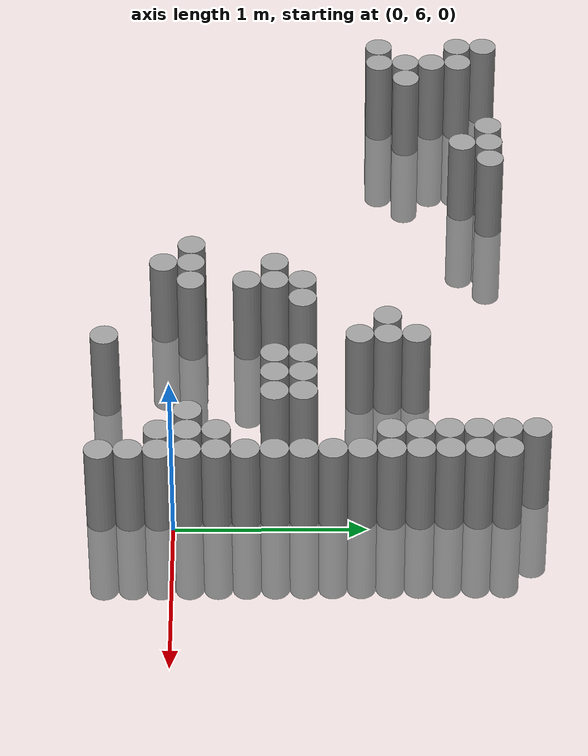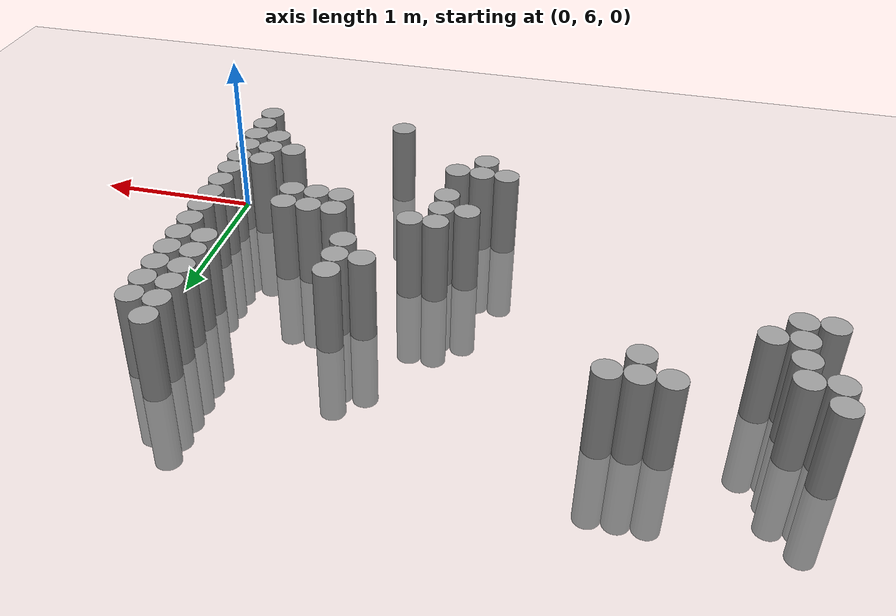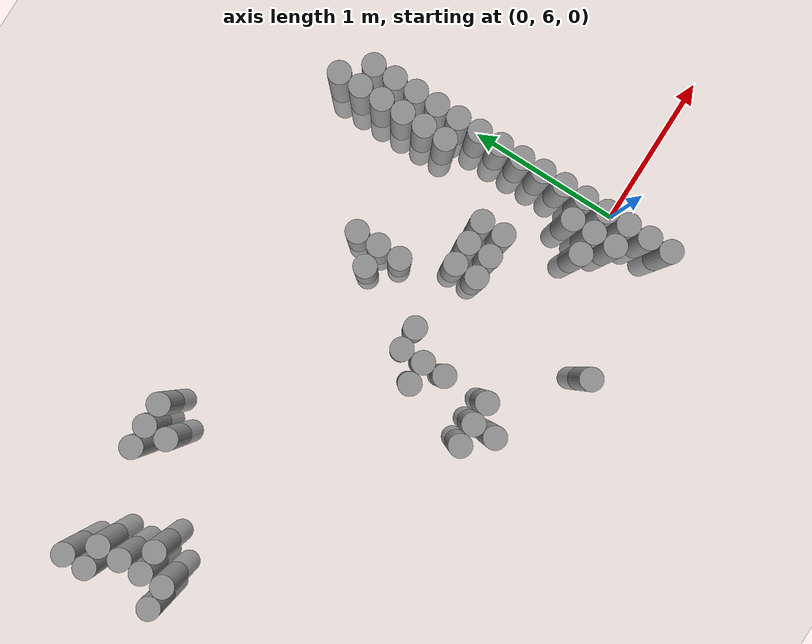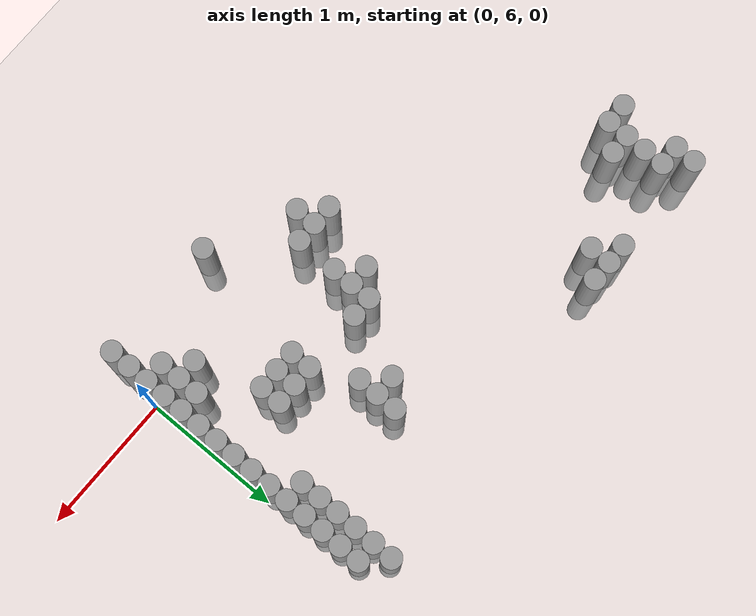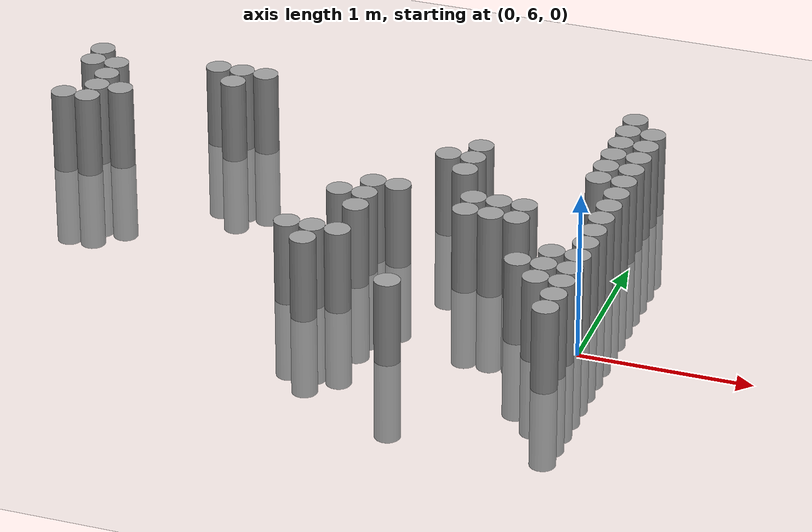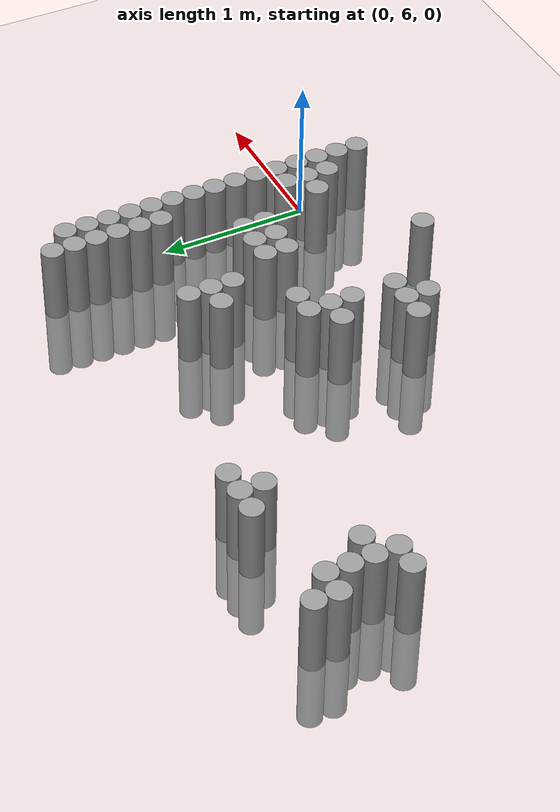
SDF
<sdf version="1.6">
 <world name="default">
  <model name="ground_plane">
   <static>1</static>
   <static>1</static>
   <link name="link">
    <collision name="collision">
     <geometry><plane><normal>0 0 1</normal><size>100 100</size></plane></geometry>
     <surface><friction><ode><mu>100</mu><mu2>50</mu2></ode></friction></surface>
    </collision>
    <visual name="visual">
     <cast_shadows>0</cast_shadows>
     <geometry><plane><normal>0 0 1</normal><size>100 100</size></plane></geometry>
     <material>
      <script><uri>file://media/materials/scripts/gazebo.material</uri><name>Gazebo/Grey</name></script>
     </material>
    </visual>
   </link>
  </model>
  <model name="unit_cylinder_159">
   <static>1</static>
   <pose>-3.525000 7.125000 0.000000 0.000000 0.000000 0.000000</pose>
   <link name="link">
    <inertial>
     <mass>1</mass>
     <inertia><ixx>0.145833</ixx><ixy>0</ixy><ixz>0</ixz><iyy>0.145833</iyy><iyz>0</iyz><izz>0.125</izz></inertia>
    </inertial>
    <collision name="collision">
     <geometry><cylinder><radius>0.075000</radius><length>1</length></cylinder></geometry>
    </collision>
    <visual name="visual">
     <geometry><cylinder><radius>0.075000</radius><length>1</length></cylinder></geometry>
     <material>
      <script><name>Gazebo/Grey</name><uri>file://media/materials/scripts/gazebo.material</uri></script>
     </material>
    </visual>
   </link>
  </model>
  <model name="unit_cylinder_160">
   <static>1</static>
   <pose>-3.525000 7.575000 0.000000 0.000000 0.000000 0.000000</pose>
   <link name="link">
    <inertial>
     <mass>1</mass>
     <inertia><ixx>0.145833</ixx><ixy>0</ixy><ixz>0</ixz><iyy>0.145833</iyy><iyz>0</iyz><izz>0.125</izz></inertia>
    </inertial>
    <collision name="collision">
     <geometry><cylinder><radius>0.075000</radius><length>1</length></cylinder></geometry>
    </collision>
    <visual name="visual">
     <geometry><cylinder><radius>0.075000</radius><length>1</length></cylinder></geometry>
     <material>
      <script><name>Gazebo/Grey</name><uri>file://media/materials/scripts/gazebo.material</uri></script>
     </material>
    </visual>
   </link>
  </model>
  <model name="unit_cylinder_161">
   <static>1</static>
   <pose>-3.525000 7.725000 0.000000 0.000000 0.000000 0.000000</pose>
   <link name="link">
    <inertial>
     <mass>1</mass>
     <inertia><ixx>0.145833</ixx><ixy>0</ixy><ixz>0</ixz><iyy>0.145833</iyy><iyz>0</iyz><izz>0.125</izz></inertia>
    </inertial>
    <collision name="collision">
     <geometry><cylinder><radius>0.075000</radius><length>1</length></cylinder></geometry>
    </collision>
    <visual name="visual">
     <geometry><cylinder><radius>0.075000</radius><length>1</length></cylinder></geometry>
     <material>
      <script><name>Gazebo/Grey</name><uri>file://media/materials/scripts/gazebo.material</uri></script>
     </material>
    </visual>
   </link>
  </model>
  <model name="unit_cylinder_162">
   <static>1</static>
   <pose>-3.375000 7.125000 0.000000 0.000000 0.000000 0.000000</pose>
   <link name="link">
    <inertial>
     <mass>1</mass>
     <inertia><ixx>0.145833</ixx><ixy>0</ixy><ixz>0</ixz><iyy>0.145833</iyy><iyz>0</iyz><izz>0.125</izz></inertia>
    </inertial>
    <collision name="collision">
     <geometry><cylinder><radius>0.075000</radius><length>1</length></cylinder></geometry>
    </collision>
    <visual name="visual">
     <geometry><cylinder><radius>0.075000</radius><length>1</length></cylinder></geometry>
     <material>
      <script><name>Gazebo/Grey</name><uri>file://media/materials/scripts/gazebo.material</uri></script>
     </material>
    </visual>
   </link>
  </model>
  <model name="unit_cylinder_163">
   <static>1</static>
   <pose>-3.375000 7.275000 0.000000 0.000000 0.000000 0.000000</pose>
   <link name="link">
    <inertial>
     <mass>1</mass>
     <inertia><ixx>0.145833</ixx><ixy>0</ixy><ixz>0</ixz><iyy>0.145833</iyy><iyz>0</iyz><izz>0.125</izz></inertia>
    </inertial>
    <collision name="collision">
     <geometry><cylinder><radius>0.075000</radius><length>1</length></cylinder></geometry>
    </collision>
    <visual name="visual">
     <geometry><cylinder><radius>0.075000</radius><length>1</length></cylinder></geometry>
     <material>
      <script><name>Gazebo/Grey</name><uri>file://media/materials/scripts/gazebo.material</uri></script>
     </material>
    </visual>
   </link>
  </model>
  <model name="unit_cylinder_164">
   <static>1</static>
   <pose>-3.375000 7.425000 0.000000 0.000000 0.000000 0.000000</pose>
   <link name="link">
    <inertial>
     <mass>1</mass>
     <inertia><ixx>0.145833</ixx><ixy>0</ixy><ixz>0</ixz><iyy>0.145833</iyy><iyz>0</iyz><izz>0.125</izz></inertia>
    </inertial>
    <collision name="collision">
     <geometry><cylinder><radius>0.075000</radius><length>1</length></cylinder></geometry>
    </collision>
    <visual name="visual">
     <geometry><cylinder><radius>0.075000</radius><length>1</length></cylinder></geometry>
     <material>
      <script><name>Gazebo/Grey</name><uri>file://media/materials/scripts/gazebo.material</uri></script>
     </material>
    </visual>
   </link>
  </model>
  <model name="unit_cylinder_165">
   <static>1</static>
   <pose>-3.375000 7.575000 0.000000 0.000000 0.000000 0.000000</pose>
   <link name="link">
    <inertial>
     <mass>1</mass>
     <inertia><ixx>0.145833</ixx><ixy>0</ixy><ixz>0</ixz><iyy>0.145833</iyy><iyz>0</iyz><izz>0.125</izz></inertia>
    </inertial>
    <collision name="collision">
     <geometry><cylinder><radius>0.075000</radius><length>1</length></cylinder></geometry>
    </collision>
    <visual name="visual">
     <geometry><cylinder><radius>0.075000</radius><length>1</length></cylinder></geometry>
     <material>
      <script><name>Gazebo/Grey</name><uri>file://media/materials/scripts/gazebo.material</uri></script>
     </material>
    </visual>
   </link>
  </model>
  <model name="unit_cylinder_166">
   <static>1</static>
   <pose>-3.225000 7.275000 0.000000 0.000000 0.000000 0.000000</pose>
   <link name="link">
    <inertial>
     <mass>1</mass>
     <inertia><ixx>0.145833</ixx><ixy>0</ixy><ixz>0</ixz><iyy>0.145833</iyy><iyz>0</iyz><izz>0.125</izz></inertia>
    </inertial>
    <collision name="collision">
     <geometry><cylinder><radius>0.075000</radius><length>1</length></cylinder></geometry>
    </collision>
    <visual name="visual">
     <geometry><cylinder><radius>0.075000</radius><length>1</length></cylinder></geometry>
     <material>
      <script><name>Gazebo/Grey</name><uri>file://media/materials/scripts/gazebo.material</uri></script>
     </material>
    </visual>
   </link>
  </model>
  <model name="unit_cylinder_176">
   <static>1</static>
   <pose>-2.775000 7.725000 0.000000 0.000000 0.000000 0.000000</pose>
   <link name="link">
    <inertial>
     <mass>1</mass>
     <inertia><ixx>0.145833</ixx><ixy>0</ixy><ixz>0</ixz><iyy>0.145833</iyy><iyz>0</iyz><izz>0.125</izz></inertia>
    </inertial>
    <collision name="collision">
     <geometry><cylinder><radius>0.075000</radius><length>1</length></cylinder></geometry>
    </collision>
    <visual name="visual">
     <geometry><cylinder><radius>0.075000</radius><length>1</length></cylinder></geometry>
     <material>
      <script><name>Gazebo/Grey</name><uri>file://media/materials/scripts/gazebo.material</uri></script>
     </material>
    </visual>
   </link>
  </model>
  <model name="unit_cylinder_181">
   <static>1</static>
   <pose>-2.625000 7.575000 0.000000 0.000000 0.000000 0.000000</pose>
   <link name="link">
    <inertial>
     <mass>1</mass>
     <inertia><ixx>0.145833</ixx><ixy>0</ixy><ixz>0</ixz><iyy>0.145833</iyy><iyz>0</iyz><izz>0.125</izz></inertia>
    </inertial>
    <collision name="collision">
     <geometry><cylinder><radius>0.075000</radius><length>1</length></cylinder></geometry>
    </collision>
    <visual name="visual">
     <geometry><cylinder><radius>0.075000</radius><length>1</length></cylinder></geometry>
     <material>
      <script><name>Gazebo/Grey</name><uri>file://media/materials/scripts/gazebo.material</uri></script>
     </material>
    </visual>
   </link>
  </model>
  <model name="unit_cylinder_182">
   <static>1</static>
   <pose>-2.625000 7.725000 0.000000 0.000000 0.000000 0.000000</pose>
   <link name="link">
    <inertial>
     <mass>1</mass>
     <inertia><ixx>0.145833</ixx><ixy>0</ixy><ixz>0</ixz><iyy>0.145833</iyy><iyz>0</iyz><izz>0.125</izz></inertia>
    </inertial>
    <collision name="collision">
     <geometry><cylinder><radius>0.075000</radius><length>1</length></cylinder></geometry>
    </collision>
    <visual name="visual">
     <geometry><cylinder><radius>0.075000</radius><length>1</length></cylinder></geometry>
     <material>
      <script><name>Gazebo/Grey</name><uri>file://media/materials/scripts/gazebo.material</uri></script>
     </material>
    </visual>
   </link>
  </model>
  <model name="unit_cylinder_186">
   <static>1</static>
   <pose>-2.475000 7.725000 0.000000 0.000000 0.000000 0.000000</pose>
   <link name="link">
    <inertial>
     <mass>1</mass>
     <inertia><ixx>0.145833</ixx><ixy>0</ixy><ixz>0</ixz><iyy>0.145833</iyy><iyz>0</iyz><izz>0.125</izz></inertia>
    </inertial>
    <collision name="collision">
     <geometry><cylinder><radius>0.075000</radius><length>1</length></cylinder></geometry>
    </collision>
    <visual name="visual">
     <geometry><cylinder><radius>0.075000</radius><length>1</length></cylinder></geometry>
     <material>
      <script><name>Gazebo/Grey</name><uri>file://media/materials/scripts/gazebo.material</uri></script>
     </material>
    </visual>
   </link>
  </model>
  <model name="unit_cylinder_202">
   <static>1</static>
   <pose>-1.725000 6.075000 0.000000 0.000000 0.000000 0.000000</pose>
   <link name="link">
    <inertial>
     <mass>1</mass>
     <inertia><ixx>0.145833</ixx><ixy>0</ixy><ixz>0</ixz><iyy>0.145833</iyy><iyz>0</iyz><izz>0.125</izz></inertia>
    </inertial>
    <collision name="collision">
     <geometry><cylinder><radius>0.075000</radius><length>1</length></cylinder></geometry>
    </collision>
    <visual name="visual">
     <geometry><cylinder><radius>0.075000</radius><length>1</length></cylinder></geometry>
     <material>
      <script><name>Gazebo/Grey</name><uri>file://media/materials/scripts/gazebo.material</uri></script>
     </material>
    </visual>
   </link>
  </model>
  <model name="unit_cylinder_207">
   <static>1</static>
   <pose>-1.575000 5.925000 0.000000 0.000000 0.000000 0.000000</pose>
   <link name="link">
    <inertial>
     <mass>1</mass>
     <inertia><ixx>0.145833</ixx><ixy>0</ixy><ixz>0</ixz><iyy>0.145833</iyy><iyz>0</iyz><izz>0.125</izz></inertia>
    </inertial>
    <collision name="collision">
     <geometry><cylinder><radius>0.075000</radius><length>1</length></cylinder></geometry>
    </collision>
    <visual name="visual">
     <geometry><cylinder><radius>0.075000</radius><length>1</length></cylinder></geometry>
     <material>
      <script><name>Gazebo/Grey</name><uri>file://media/materials/scripts/gazebo.material</uri></script>
     </material>
    </visual>
   </link>
  </model>
  <model name="unit_cylinder_208">
   <static>1</static>
   <pose>-1.575000 6.075000 0.000000 0.000000 0.000000 0.000000</pose>
   <link name="link">
    <inertial>
     <mass>1</mass>
     <inertia><ixx>0.145833</ixx><ixy>0</ixy><ixz>0</ixz><iyy>0.145833</iyy><iyz>0</iyz><izz>0.125</izz></inertia>
    </inertial>
    <collision name="collision">
     <geometry><cylinder><radius>0.075000</radius><length>1</length></cylinder></geometry>
    </collision>
    <visual name="visual">
     <geometry><cylinder><radius>0.075000</radius><length>1</length></cylinder></geometry>
     <material>
      <script><name>Gazebo/Grey</name><uri>file://media/materials/scripts/gazebo.material</uri></script>
     </material>
    </visual>
   </link>
  </model>
  <model name="unit_cylinder_209">
   <static>1</static>
   <pose>-1.575000 6.525000 0.000000 0.000000 0.000000 0.000000</pose>
   <link name="link">
    <inertial>
     <mass>1</mass>
     <inertia><ixx>0.145833</ixx><ixy>0</ixy><ixz>0</ixz><iyy>0.145833</iyy><iyz>0</iyz><izz>0.125</izz></inertia>
    </inertial>
    <collision name="collision">
     <geometry><cylinder><radius>0.075000</radius><length>1</length></cylinder></geometry>
    </collision>
    <visual name="visual">
     <geometry><cylinder><radius>0.075000</radius><length>1</length></cylinder></geometry>
     <material>
      <script><name>Gazebo/Grey</name><uri>file://media/materials/scripts/gazebo.material</uri></script>
     </material>
    </visual>
   </link>
  </model>
  <model name="unit_cylinder_213">
   <static>1</static>
   <pose>-1.425000 6.075000 0.000000 0.000000 0.000000 0.000000</pose>
   <link name="link">
    <inertial>
     <mass>1</mass>
     <inertia><ixx>0.145833</ixx><ixy>0</ixy><ixz>0</ixz><iyy>0.145833</iyy><iyz>0</iyz><izz>0.125</izz></inertia>
    </inertial>
    <collision name="collision">
     <geometry><cylinder><radius>0.075000</radius><length>1</length></cylinder></geometry>
    </collision>
    <visual name="visual">
     <geometry><cylinder><radius>0.075000</radius><length>1</length></cylinder></geometry>
     <material>
      <script><name>Gazebo/Grey</name><uri>file://media/materials/scripts/gazebo.material</uri></script>
     </material>
    </visual>
   </link>
  </model>
  <model name="unit_cylinder_214">
   <static>1</static>
   <pose>-1.425000 6.375000 0.000000 0.000000 0.000000 0.000000</pose>
   <link name="link">
    <inertial>
     <mass>1</mass>
     <inertia><ixx>0.145833</ixx><ixy>0</ixy><ixz>0</ixz><iyy>0.145833</iyy><iyz>0</iyz><izz>0.125</izz></inertia>
    </inertial>
    <collision name="collision">
     <geometry><cylinder><radius>0.075000</radius><length>1</length></cylinder></geometry>
    </collision>
    <visual name="visual">
     <geometry><cylinder><radius>0.075000</radius><length>1</length></cylinder></geometry>
     <material>
      <script><name>Gazebo/Grey</name><uri>file://media/materials/scripts/gazebo.material</uri></script>
     </material>
    </visual>
   </link>
  </model>
  <model name="unit_cylinder_215">
   <static>1</static>
   <pose>-1.425000 6.525000 0.000000 0.000000 0.000000 0.000000</pose>
   <link name="link">
    <inertial>
     <mass>1</mass>
     <inertia><ixx>0.145833</ixx><ixy>0</ixy><ixz>0</ixz><iyy>0.145833</iyy><iyz>0</iyz><izz>0.125</izz></inertia>
    </inertial>
    <collision name="collision">
     <geometry><cylinder><radius>0.075000</radius><length>1</length></cylinder></geometry>
    </collision>
    <visual name="visual">
     <geometry><cylinder><radius>0.075000</radius><length>1</length></cylinder></geometry>
     <material>
      <script><name>Gazebo/Grey</name><uri>file://media/materials/scripts/gazebo.material</uri></script>
     </material>
    </visual>
   </link>
  </model>
  <model name="unit_cylinder_216">
   <static>1</static>
   <pose>-1.425000 6.675000 0.000000 0.000000 0.000000 0.000000</pose>
   <link name="link">
    <inertial>
     <mass>1</mass>
     <inertia><ixx>0.145833</ixx><ixy>0</ixy><ixz>0</ixz><iyy>0.145833</iyy><iyz>0</iyz><izz>0.125</izz></inertia>
    </inertial>
    <collision name="collision">
     <geometry><cylinder><radius>0.075000</radius><length>1</length></cylinder></geometry>
    </collision>
    <visual name="visual">
     <geometry><cylinder><radius>0.075000</radius><length>1</length></cylinder></geometry>
     <material>
      <script><name>Gazebo/Grey</name><uri>file://media/materials/scripts/gazebo.material</uri></script>
     </material>
    </visual>
   </link>
  </model>
  <model name="unit_cylinder_220">
   <static>1</static>
   <pose>-1.275000 6.675000 0.000000 0.000000 0.000000 0.000000</pose>
   <link name="link">
    <inertial>
     <mass>1</mass>
     <inertia><ixx>0.145833</ixx><ixy>0</ixy><ixz>0</ixz><iyy>0.145833</iyy><iyz>0</iyz><izz>0.125</izz></inertia>
    </inertial>
    <collision name="collision">
     <geometry><cylinder><radius>0.075000</radius><length>1</length></cylinder></geometry>
    </collision>
    <visual name="visual">
     <geometry><cylinder><radius>0.075000</radius><length>1</length></cylinder></geometry>
     <material>
      <script><name>Gazebo/Grey</name><uri>file://media/materials/scripts/gazebo.material</uri></script>
     </material>
    </visual>
   </link>
  </model>
  <model name="unit_cylinder_222">
   <static>1</static>
   <pose>-1.125000 7.125000 0.000000 0.000000 0.000000 0.000000</pose>
   <link name="link">
    <inertial>
     <mass>1</mass>
     <inertia><ixx>0.145833</ixx><ixy>0</ixy><ixz>0</ixz><iyy>0.145833</iyy><iyz>0</iyz><izz>0.125</izz></inertia>
    </inertial>
    <collision name="collision">
     <geometry><cylinder><radius>0.075000</radius><length>1</length></cylinder></geometry>
    </collision>
    <visual name="visual">
     <geometry><cylinder><radius>0.075000</radius><length>1</length></cylinder></geometry>
     <material>
      <script><name>Gazebo/Grey</name><uri>file://media/materials/scripts/gazebo.material</uri></script>
     </material>
    </visual>
   </link>
  </model>
  <model name="unit_cylinder_224">
   <static>1</static>
   <pose>-0.975000 5.625000 0.000000 0.000000 0.000000 0.000000</pose>
   <link name="link">
    <inertial>
     <mass>1</mass>
     <inertia><ixx>0.145833</ixx><ixy>0</ixy><ixz>0</ixz><iyy>0.145833</iyy><iyz>0</iyz><izz>0.125</izz></inertia>
    </inertial>
    <collision name="collision">
     <geometry><cylinder><radius>0.075000</radius><length>1</length></cylinder></geometry>
    </collision>
    <visual name="visual">
     <geometry><cylinder><radius>0.075000</radius><length>1</length></cylinder></geometry>
     <material>
      <script><name>Gazebo/Grey</name><uri>file://media/materials/scripts/gazebo.material</uri></script>
     </material>
    </visual>
   </link>
  </model>
  <model name="unit_cylinder_225">
   <static>1</static>
   <pose>-0.975000 6.975000 0.000000 0.000000 0.000000 0.000000</pose>
   <link name="link">
    <inertial>
     <mass>1</mass>
     <inertia><ixx>0.145833</ixx><ixy>0</ixy><ixz>0</ixz><iyy>0.145833</iyy><iyz>0</iyz><izz>0.125</izz></inertia>
    </inertial>
    <collision name="collision">
     <geometry><cylinder><radius>0.075000</radius><length>1</length></cylinder></geometry>
    </collision>
    <visual name="visual">
     <geometry><cylinder><radius>0.075000</radius><length>1</length></cylinder></geometry>
     <material>
      <script><name>Gazebo/Grey</name><uri>file://media/materials/scripts/gazebo.material</uri></script>
     </material>
    </visual>
   </link>
  </model>
  <model name="unit_cylinder_226">
   <static>1</static>
   <pose>-0.975000 7.125000 0.000000 0.000000 0.000000 0.000000</pose>
   <link name="link">
    <inertial>
     <mass>1</mass>
     <inertia><ixx>0.145833</ixx><ixy>0</ixy><ixz>0</ixz><iyy>0.145833</iyy><iyz>0</iyz><izz>0.125</izz></inertia>
    </inertial>
    <collision name="collision">
     <geometry><cylinder><radius>0.075000</radius><length>1</length></cylinder></geometry>
    </collision>
    <visual name="visual">
     <geometry><cylinder><radius>0.075000</radius><length>1</length></cylinder></geometry>
     <material>
      <script><name>Gazebo/Grey</name><uri>file://media/materials/scripts/gazebo.material</uri></script>
     </material>
    </visual>
   </link>
  </model>
  <model name="unit_cylinder_227">
   <static>1</static>
   <pose>-0.975000 7.275000 0.000000 0.000000 0.000000 0.000000</pose>
   <link name="link">
    <inertial>
     <mass>1</mass>
     <inertia><ixx>0.145833</ixx><ixy>0</ixy><ixz>0</ixz><iyy>0.145833</iyy><iyz>0</iyz><izz>0.125</izz></inertia>
    </inertial>
    <collision name="collision">
     <geometry><cylinder><radius>0.075000</radius><length>1</length></cylinder></geometry>
    </collision>
    <visual name="visual">
     <geometry><cylinder><radius>0.075000</radius><length>1</length></cylinder></geometry>
     <material>
      <script><name>Gazebo/Grey</name><uri>file://media/materials/scripts/gazebo.material</uri></script>
     </material>
    </visual>
   </link>
  </model>
  <model name="unit_cylinder_230">
   <static>1</static>
   <pose>-0.825000 6.525000 0.000000 0.000000 0.000000 0.000000</pose>
   <link name="link">
    <inertial>
     <mass>1</mass>
     <inertia><ixx>0.145833</ixx><ixy>0</ixy><ixz>0</ixz><iyy>0.145833</iyy><iyz>0</iyz><izz>0.125</izz></inertia>
    </inertial>
    <collision name="collision">
     <geometry><cylinder><radius>0.075000</radius><length>1</length></cylinder></geometry>
    </collision>
    <visual name="visual">
     <geometry><cylinder><radius>0.075000</radius><length>1</length></cylinder></geometry>
     <material>
      <script><name>Gazebo/Grey</name><uri>file://media/materials/scripts/gazebo.material</uri></script>
     </material>
    </visual>
   </link>
  </model>
  <model name="unit_cylinder_231">
   <static>1</static>
   <pose>-0.825000 6.675000 0.000000 0.000000 0.000000 0.000000</pose>
   <link name="link">
    <inertial>
     <mass>1</mass>
     <inertia><ixx>0.145833</ixx><ixy>0</ixy><ixz>0</ixz><iyy>0.145833</iyy><iyz>0</iyz><izz>0.125</izz></inertia>
    </inertial>
    <collision name="collision">
     <geometry><cylinder><radius>0.075000</radius><length>1</length></cylinder></geometry>
    </collision>
    <visual name="visual">
     <geometry><cylinder><radius>0.075000</radius><length>1</length></cylinder></geometry>
     <material>
      <script><name>Gazebo/Grey</name><uri>file://media/materials/scripts/gazebo.material</uri></script>
     </material>
    </visual>
   </link>
  </model>
  <model name="unit_cylinder_235">
   <static>1</static>
   <pose>-0.675000 6.525000 0.000000 0.000000 0.000000 0.000000</pose>
   <link name="link">
    <inertial>
     <mass>1</mass>
     <inertia><ixx>0.145833</ixx><ixy>0</ixy><ixz>0</ixz><iyy>0.145833</iyy><iyz>0</iyz><izz>0.125</izz></inertia>
    </inertial>
    <collision name="collision">
     <geometry><cylinder><radius>0.075000</radius><length>1</length></cylinder></geometry>
    </collision>
    <visual name="visual">
     <geometry><cylinder><radius>0.075000</radius><length>1</length></cylinder></geometry>
     <material>
      <script><name>Gazebo/Grey</name><uri>file://media/materials/scripts/gazebo.material</uri></script>
     </material>
    </visual>
   </link>
  </model>
  <model name="unit_cylinder_236">
   <static>1</static>
   <pose>-0.675000 6.675000 0.000000 0.000000 0.000000 0.000000</pose>
   <link name="link">
    <inertial>
     <mass>1</mass>
     <inertia><ixx>0.145833</ixx><ixy>0</ixy><ixz>0</ixz><iyy>0.145833</iyy><iyz>0</iyz><izz>0.125</izz></inertia>
    </inertial>
    <collision name="collision">
     <geometry><cylinder><radius>0.075000</radius><length>1</length></cylinder></geometry>
    </collision>
    <visual name="visual">
     <geometry><cylinder><radius>0.075000</radius><length>1</length></cylinder></geometry>
     <material>
      <script><name>Gazebo/Grey</name><uri>file://media/materials/scripts/gazebo.material</uri></script>
     </material>
    </visual>
   </link>
  </model>
  <model name="unit_cylinder_239">
   <static>1</static>
   <pose>-0.525000 6.525000 0.000000 0.000000 0.000000 0.000000</pose>
   <link name="link">
    <inertial>
     <mass>1</mass>
     <inertia><ixx>0.145833</ixx><ixy>0</ixy><ixz>0</ixz><iyy>0.145833</iyy><iyz>0</iyz><izz>0.125</izz></inertia>
    </inertial>
    <collision name="collision">
     <geometry><cylinder><radius>0.075000</radius><length>1</length></cylinder></geometry>
    </collision>
    <visual name="visual">
     <geometry><cylinder><radius>0.075000</radius><length>1</length></cylinder></geometry>
     <material>
      <script><name>Gazebo/Grey</name><uri>file://media/materials/scripts/gazebo.material</uri></script>
     </material>
    </visual>
   </link>
  </model>
  <model name="unit_cylinder_240">
   <static>1</static>
   <pose>-0.525000 6.675000 0.000000 0.000000 0.000000 0.000000</pose>
   <link name="link">
    <inertial>
     <mass>1</mass>
     <inertia><ixx>0.145833</ixx><ixy>0</ixy><ixz>0</ixz><iyy>0.145833</iyy><iyz>0</iyz><izz>0.125</izz></inertia>
    </inertial>
    <collision name="collision">
     <geometry><cylinder><radius>0.075000</radius><length>1</length></cylinder></geometry>
    </collision>
    <visual name="visual">
     <geometry><cylinder><radius>0.075000</radius><length>1</length></cylinder></geometry>
     <material>
      <script><name>Gazebo/Grey</name><uri>file://media/materials/scripts/gazebo.material</uri></script>
     </material>
    </visual>
   </link>
  </model>
  <model name="unit_cylinder_241">
   <static>1</static>
   <pose>-0.375000 6.075000 0.000000 0.000000 0.000000 0.000000</pose>
   <link name="link">
    <inertial>
     <mass>1</mass>
     <inertia><ixx>0.145833</ixx><ixy>0</ixy><ixz>0</ixz><iyy>0.145833</iyy><iyz>0</iyz><izz>0.125</izz></inertia>
    </inertial>
    <collision name="collision">
     <geometry><cylinder><radius>0.075000</radius><length>1</length></cylinder></geometry>
    </collision>
    <visual name="visual">
     <geometry><cylinder><radius>0.075000</radius><length>1</length></cylinder></geometry>
     <material>
      <script><name>Gazebo/Grey</name><uri>file://media/materials/scripts/gazebo.material</uri></script>
     </material>
    </visual>
   </link>
  </model>
  <model name="unit_cylinder_245">
   <static>1</static>
   <pose>-0.225000 5.925000 0.000000 0.000000 0.000000 0.000000</pose>
   <link name="link">
    <inertial>
     <mass>1</mass>
     <inertia><ixx>0.145833</ixx><ixy>0</ixy><ixz>0</ixz><iyy>0.145833</iyy><iyz>0</iyz><izz>0.125</izz></inertia>
    </inertial>
    <collision name="collision">
     <geometry><cylinder><radius>0.075000</radius><length>1</length></cylinder></geometry>
    </collision>
    <visual name="visual">
     <geometry><cylinder><radius>0.075000</radius><length>1</length></cylinder></geometry>
     <material>
      <script><name>Gazebo/Grey</name><uri>file://media/materials/scripts/gazebo.material</uri></script>
     </material>
    </visual>
   </link>
  </model>
  <model name="unit_cylinder_246">
   <static>1</static>
   <pose>-0.225000 6.075000 0.000000 0.000000 0.000000 0.000000</pose>
   <link name="link">
    <inertial>
     <mass>1</mass>
     <inertia><ixx>0.145833</ixx><ixy>0</ixy><ixz>0</ixz><iyy>0.145833</iyy><iyz>0</iyz><izz>0.125</izz></inertia>
    </inertial>
    <collision name="collision">
     <geometry><cylinder><radius>0.075000</radius><length>1</length></cylinder></geometry>
    </collision>
    <visual name="visual">
     <geometry><cylinder><radius>0.075000</radius><length>1</length></cylinder></geometry>
     <material>
      <script><name>Gazebo/Grey</name><uri>file://media/materials/scripts/gazebo.material</uri></script>
     </material>
    </visual>
   </link>
  </model>
  <model name="unit_cylinder_247">
   <static>1</static>
   <pose>-0.225000 6.225000 0.000000 0.000000 0.000000 0.000000</pose>
   <link name="link">
    <inertial>
     <mass>1</mass>
     <inertia><ixx>0.145833</ixx><ixy>0</ixy><ixz>0</ixz><iyy>0.145833</iyy><iyz>0</iyz><izz>0.125</izz></inertia>
    </inertial>
    <collision name="collision">
     <geometry><cylinder><radius>0.075000</radius><length>1</length></cylinder></geometry>
    </collision>
    <visual name="visual">
     <geometry><cylinder><radius>0.075000</radius><length>1</length></cylinder></geometry>
     <material>
      <script><name>Gazebo/Grey</name><uri>file://media/materials/scripts/gazebo.material</uri></script>
     </material>
    </visual>
   </link>
  </model>
  <model name="unit_cylinder_248">
   <static>1</static>
   <pose>-0.225000 7.125000 0.000000 0.000000 0.000000 0.000000</pose>
   <link name="link">
    <inertial>
     <mass>1</mass>
     <inertia><ixx>0.145833</ixx><ixy>0</ixy><ixz>0</ixz><iyy>0.145833</iyy><iyz>0</iyz><izz>0.125</izz></inertia>
    </inertial>
    <collision name="collision">
     <geometry><cylinder><radius>0.075000</radius><length>1</length></cylinder></geometry>
    </collision>
    <visual name="visual">
     <geometry><cylinder><radius>0.075000</radius><length>1</length></cylinder></geometry>
     <material>
      <script><name>Gazebo/Grey</name><uri>file://media/materials/scripts/gazebo.material</uri></script>
     </material>
    </visual>
   </link>
  </model>
  <model name="unit_cylinder_249">
   <static>1</static>
   <pose>-0.225000 7.275000 0.000000 0.000000 0.000000 0.000000</pose>
   <link name="link">
    <inertial>
     <mass>1</mass>
     <inertia><ixx>0.145833</ixx><ixy>0</ixy><ixz>0</ixz><iyy>0.145833</iyy><iyz>0</iyz><izz>0.125</izz></inertia>
    </inertial>
    <collision name="collision">
     <geometry><cylinder><radius>0.075000</radius><length>1</length></cylinder></geometry>
    </collision>
    <visual name="visual">
     <geometry><cylinder><radius>0.075000</radius><length>1</length></cylinder></geometry>
     <material>
      <script><name>Gazebo/Grey</name><uri>file://media/materials/scripts/gazebo.material</uri></script>
     </material>
    </visual>
   </link>
  </model>
  <model name="unit_cylinder_250">
   <static>1</static>
   <pose>-0.225000 7.425000 0.000000 0.000000 0.000000 0.000000</pose>
   <link name="link">
    <inertial>
     <mass>1</mass>
     <inertia><ixx>0.145833</ixx><ixy>0</ixy><ixz>0</ixz><iyy>0.145833</iyy><iyz>0</iyz><izz>0.125</izz></inertia>
    </inertial>
    <collision name="collision">
     <geometry><cylinder><radius>0.075000</radius><length>1</length></cylinder></geometry>
    </collision>
    <visual name="visual">
     <geometry><cylinder><radius>0.075000</radius><length>1</length></cylinder></geometry>
     <material>
      <script><name>Gazebo/Grey</name><uri>file://media/materials/scripts/gazebo.material</uri></script>
     </material>
    </visual>
   </link>
  </model>
  <model name="unit_cylinder_251">
   <static>1</static>
   <pose>-0.225000 7.575000 0.000000 0.000000 0.000000 0.000000</pose>
   <link name="link">
    <inertial>
     <mass>1</mass>
     <inertia><ixx>0.145833</ixx><ixy>0</ixy><ixz>0</ixz><iyy>0.145833</iyy><iyz>0</iyz><izz>0.125</izz></inertia>
    </inertial>
    <collision name="collision">
     <geometry><cylinder><radius>0.075000</radius><length>1</length></cylinder></geometry>
    </collision>
    <visual name="visual">
     <geometry><cylinder><radius>0.075000</radius><length>1</length></cylinder></geometry>
     <material>
      <script><name>Gazebo/Grey</name><uri>file://media/materials/scripts/gazebo.material</uri></script>
     </material>
    </visual>
   </link>
  </model>
  <model name="unit_cylinder_252">
   <static>1</static>
   <pose>-0.225000 7.725000 0.000000 0.000000 0.000000 0.000000</pose>
   <link name="link">
    <inertial>
     <mass>1</mass>
     <inertia><ixx>0.145833</ixx><ixy>0</ixy><ixz>0</ixz><iyy>0.145833</iyy><iyz>0</iyz><izz>0.125</izz></inertia>
    </inertial>
    <collision name="collision">
     <geometry><cylinder><radius>0.075000</radius><length>1</length></cylinder></geometry>
    </collision>
    <visual name="visual">
     <geometry><cylinder><radius>0.075000</radius><length>1</length></cylinder></geometry>
     <material>
      <script><name>Gazebo/Grey</name><uri>file://media/materials/scripts/gazebo.material</uri></script>
     </material>
    </visual>
   </link>
  </model>
  <model name="unit_cylinder_253">
   <static>1</static>
   <pose>-0.225000 7.875000 0.000000 0.000000 0.000000 0.000000</pose>
   <link name="link">
    <inertial>
     <mass>1</mass>
     <inertia><ixx>0.145833</ixx><ixy>0</ixy><ixz>0</ixz><iyy>0.145833</iyy><iyz>0</iyz><izz>0.125</izz></inertia>
    </inertial>
    <collision name="collision">
     <geometry><cylinder><radius>0.075000</radius><length>1</length></cylinder></geometry>
    </collision>
    <visual name="visual">
     <geometry><cylinder><radius>0.075000</radius><length>1</length></cylinder></geometry>
     <material>
      <script><name>Gazebo/Grey</name><uri>file://media/materials/scripts/gazebo.material</uri></script>
     </material>
    </visual>
   </link>
  </model>
  <model name="unit_cylinder_260">
   <static>1</static>
   <pose>-0.075000 5.625000 0.000000 0.000000 0.000000 0.000000</pose>
   <link name="link">
    <inertial>
     <mass>1</mass>
     <inertia><ixx>0.145833</ixx><ixy>0</ixy><ixz>0</ixz><iyy>0.145833</iyy><iyz>0</iyz><izz>0.125</izz></inertia>
    </inertial>
    <collision name="collision">
     <geometry><cylinder><radius>0.075000</radius><length>1</length></cylinder></geometry>
    </collision>
    <visual name="visual">
     <geometry><cylinder><radius>0.075000</radius><length>1</length></cylinder></geometry>
     <material>
      <script><name>Gazebo/Grey</name><uri>file://media/materials/scripts/gazebo.material</uri></script>
     </material>
    </visual>
   </link>
  </model>
  <model name="unit_cylinder_261">
   <static>1</static>
   <pose>-0.075000 5.775000 0.000000 0.000000 0.000000 0.000000</pose>
   <link name="link">
    <inertial>
     <mass>1</mass>
     <inertia><ixx>0.145833</ixx><ixy>0</ixy><ixz>0</ixz><iyy>0.145833</iyy><iyz>0</iyz><izz>0.125</izz></inertia>
    </inertial>
    <collision name="collision">
     <geometry><cylinder><radius>0.075000</radius><length>1</length></cylinder></geometry>
    </collision>
    <visual name="visual">
     <geometry><cylinder><radius>0.075000</radius><length>1</length></cylinder></geometry>
     <material>
      <script><name>Gazebo/Grey</name><uri>file://media/materials/scripts/gazebo.material</uri></script>
     </material>
    </visual>
   </link>
  </model>
  <model name="unit_cylinder_262">
   <static>1</static>
   <pose>-0.075000 5.925000 0.000000 0.000000 0.000000 0.000000</pose>
   <link name="link">
    <inertial>
     <mass>1</mass>
     <inertia><ixx>0.145833</ixx><ixy>0</ixy><ixz>0</ixz><iyy>0.145833</iyy><iyz>0</iyz><izz>0.125</izz></inertia>
    </inertial>
    <collision name="collision">
     <geometry><cylinder><radius>0.075000</radius><length>1</length></cylinder></geometry>
    </collision>
    <visual name="visual">
     <geometry><cylinder><radius>0.075000</radius><length>1</length></cylinder></geometry>
     <material>
      <script><name>Gazebo/Grey</name><uri>file://media/materials/scripts/gazebo.material</uri></script>
     </material>
    </visual>
   </link>
  </model>
  <model name="unit_cylinder_263">
   <static>1</static>
   <pose>-0.075000 6.075000 0.000000 0.000000 0.000000 0.000000</pose>
   <link name="link">
    <inertial>
     <mass>1</mass>
     <inertia><ixx>0.145833</ixx><ixy>0</ixy><ixz>0</ixz><iyy>0.145833</iyy><iyz>0</iyz><izz>0.125</izz></inertia>
    </inertial>
    <collision name="collision">
     <geometry><cylinder><radius>0.075000</radius><length>1</length></cylinder></geometry>
    </collision>
    <visual name="visual">
     <geometry><cylinder><radius>0.075000</radius><length>1</length></cylinder></geometry>
     <material>
      <script><name>Gazebo/Grey</name><uri>file://media/materials/scripts/gazebo.material</uri></script>
     </material>
    </visual>
   </link>
  </model>
  <model name="unit_cylinder_264">
   <static>1</static>
   <pose>-0.075000 6.225000 0.000000 0.000000 0.000000 0.000000</pose>
   <link name="link">
    <inertial>
     <mass>1</mass>
     <inertia><ixx>0.145833</ixx><ixy>0</ixy><ixz>0</ixz><iyy>0.145833</iyy><iyz>0</iyz><izz>0.125</izz></inertia>
    </inertial>
    <collision name="collision">
     <geometry><cylinder><radius>0.075000</radius><length>1</length></cylinder></geometry>
    </collision>
    <visual name="visual">
     <geometry><cylinder><radius>0.075000</radius><length>1</length></cylinder></geometry>
     <material>
      <script><name>Gazebo/Grey</name><uri>file://media/materials/scripts/gazebo.material</uri></script>
     </material>
    </visual>
   </link>
  </model>
  <model name="unit_cylinder_265">
   <static>1</static>
   <pose>-0.075000 6.375000 0.000000 0.000000 0.000000 0.000000</pose>
   <link name="link">
    <inertial>
     <mass>1</mass>
     <inertia><ixx>0.145833</ixx><ixy>0</ixy><ixz>0</ixz><iyy>0.145833</iyy><iyz>0</iyz><izz>0.125</izz></inertia>
    </inertial>
    <collision name="collision">
     <geometry><cylinder><radius>0.075000</radius><length>1</length></cylinder></geometry>
    </collision>
    <visual name="visual">
     <geometry><cylinder><radius>0.075000</radius><length>1</length></cylinder></geometry>
     <material>
      <script><name>Gazebo/Grey</name><uri>file://media/materials/scripts/gazebo.material</uri></script>
     </material>
    </visual>
   </link>
  </model>
  <model name="unit_cylinder_266">
   <static>1</static>
   <pose>-0.075000 6.525000 0.000000 0.000000 0.000000 0.000000</pose>
   <link name="link">
    <inertial>
     <mass>1</mass>
     <inertia><ixx>0.145833</ixx><ixy>0</ixy><ixz>0</ixz><iyy>0.145833</iyy><iyz>0</iyz><izz>0.125</izz></inertia>
    </inertial>
    <collision name="collision">
     <geometry><cylinder><radius>0.075000</radius><length>1</length></cylinder></geometry>
    </collision>
    <visual name="visual">
     <geometry><cylinder><radius>0.075000</radius><length>1</length></cylinder></geometry>
     <material>
      <script><name>Gazebo/Grey</name><uri>file://media/materials/scripts/gazebo.material</uri></script>
     </material>
    </visual>
   </link>
  </model>
  <model name="unit_cylinder_267">
   <static>1</static>
   <pose>-0.075000 6.675000 0.000000 0.000000 0.000000 0.000000</pose>
   <link name="link">
    <inertial>
     <mass>1</mass>
     <inertia><ixx>0.145833</ixx><ixy>0</ixy><ixz>0</ixz><iyy>0.145833</iyy><iyz>0</iyz><izz>0.125</izz></inertia>
    </inertial>
    <collision name="collision">
     <geometry><cylinder><radius>0.075000</radius><length>1</length></cylinder></geometry>
    </collision>
    <visual name="visual">
     <geometry><cylinder><radius>0.075000</radius><length>1</length></cylinder></geometry>
     <material>
      <script><name>Gazebo/Grey</name><uri>file://media/materials/scripts/gazebo.material</uri></script>
     </material>
    </visual>
   </link>
  </model>
  <model name="unit_cylinder_268">
   <static>1</static>
   <pose>-0.075000 6.825000 0.000000 0.000000 0.000000 0.000000</pose>
   <link name="link">
    <inertial>
     <mass>1</mass>
     <inertia><ixx>0.145833</ixx><ixy>0</ixy><ixz>0</ixz><iyy>0.145833</iyy><iyz>0</iyz><izz>0.125</izz></inertia>
    </inertial>
    <collision name="collision">
     <geometry><cylinder><radius>0.075000</radius><length>1</length></cylinder></geometry>
    </collision>
    <visual name="visual">
     <geometry><cylinder><radius>0.075000</radius><length>1</length></cylinder></geometry>
     <material>
      <script><name>Gazebo/Grey</name><uri>file://media/materials/scripts/gazebo.material</uri></script>
     </material>
    </visual>
   </link>
  </model>
  <model name="unit_cylinder_269">
   <static>1</static>
   <pose>-0.075000 6.975000 0.000000 0.000000 0.000000 0.000000</pose>
   <link name="link">
    <inertial>
     <mass>1</mass>
     <inertia><ixx>0.145833</ixx><ixy>0</ixy><ixz>0</ixz><iyy>0.145833</iyy><iyz>0</iyz><izz>0.125</izz></inertia>
    </inertial>
    <collision name="collision">
     <geometry><cylinder><radius>0.075000</radius><length>1</length></cylinder></geometry>
    </collision>
    <visual name="visual">
     <geometry><cylinder><radius>0.075000</radius><length>1</length></cylinder></geometry>
     <material>
      <script><name>Gazebo/Grey</name><uri>file://media/materials/scripts/gazebo.material</uri></script>
     </material>
    </visual>
   </link>
  </model>
  <model name="unit_cylinder_270">
   <static>1</static>
   <pose>-0.075000 7.125000 0.000000 0.000000 0.000000 0.000000</pose>
   <link name="link">
    <inertial>
     <mass>1</mass>
     <inertia><ixx>0.145833</ixx><ixy>0</ixy><ixz>0</ixz><iyy>0.145833</iyy><iyz>0</iyz><izz>0.125</izz></inertia>
    </inertial>
    <collision name="collision">
     <geometry><cylinder><radius>0.075000</radius><length>1</length></cylinder></geometry>
    </collision>
    <visual name="visual">
     <geometry><cylinder><radius>0.075000</radius><length>1</length></cylinder></geometry>
     <material>
      <script><name>Gazebo/Grey</name><uri>file://media/materials/scripts/gazebo.material</uri></script>
     </material>
    </visual>
   </link>
  </model>
  <model name="unit_cylinder_271">
   <static>1</static>
   <pose>-0.075000 7.275000 0.000000 0.000000 0.000000 0.000000</pose>
   <link name="link">
    <inertial>
     <mass>1</mass>
     <inertia><ixx>0.145833</ixx><ixy>0</ixy><ixz>0</ixz><iyy>0.145833</iyy><iyz>0</iyz><izz>0.125</izz></inertia>
    </inertial>
    <collision name="collision">
     <geometry><cylinder><radius>0.075000</radius><length>1</length></cylinder></geometry>
    </collision>
    <visual name="visual">
     <geometry><cylinder><radius>0.075000</radius><length>1</length></cylinder></geometry>
     <material>
      <script><name>Gazebo/Grey</name><uri>file://media/materials/scripts/gazebo.material</uri></script>
     </material>
    </visual>
   </link>
  </model>
  <model name="unit_cylinder_272">
   <static>1</static>
   <pose>-0.075000 7.425000 0.000000 0.000000 0.000000 0.000000</pose>
   <link name="link">
    <inertial>
     <mass>1</mass>
     <inertia><ixx>0.145833</ixx><ixy>0</ixy><ixz>0</ixz><iyy>0.145833</iyy><iyz>0</iyz><izz>0.125</izz></inertia>
    </inertial>
    <collision name="collision">
     <geometry><cylinder><radius>0.075000</radius><length>1</length></cylinder></geometry>
    </collision>
    <visual name="visual">
     <geometry><cylinder><radius>0.075000</radius><length>1</length></cylinder></geometry>
     <material>
      <script><name>Gazebo/Grey</name><uri>file://media/materials/scripts/gazebo.material</uri></script>
     </material>
    </visual>
   </link>
  </model>
  <model name="unit_cylinder_273">
   <static>1</static>
   <pose>-0.075000 7.575000 0.000000 0.000000 0.000000 0.000000</pose>
   <link name="link">
    <inertial>
     <mass>1</mass>
     <inertia><ixx>0.145833</ixx><ixy>0</ixy><ixz>0</ixz><iyy>0.145833</iyy><iyz>0</iyz><izz>0.125</izz></inertia>
    </inertial>
    <collision name="collision">
     <geometry><cylinder><radius>0.075000</radius><length>1</length></cylinder></geometry>
    </collision>
    <visual name="visual">
     <geometry><cylinder><radius>0.075000</radius><length>1</length></cylinder></geometry>
     <material>
      <script><name>Gazebo/Grey</name><uri>file://media/materials/scripts/gazebo.material</uri></script>
     </material>
    </visual>
   </link>
  </model>
  <model name="unit_cylinder_274">
   <static>1</static>
   <pose>-0.075000 7.725000 0.000000 0.000000 0.000000 0.000000</pose>
   <link name="link">
    <inertial>
     <mass>1</mass>
     <inertia><ixx>0.145833</ixx><ixy>0</ixy><ixz>0</ixz><iyy>0.145833</iyy><iyz>0</iyz><izz>0.125</izz></inertia>
    </inertial>
    <collision name="collision">
     <geometry><cylinder><radius>0.075000</radius><length>1</length></cylinder></geometry>
    </collision>
    <visual name="visual">
     <geometry><cylinder><radius>0.075000</radius><length>1</length></cylinder></geometry>
     <material>
      <script><name>Gazebo/Grey</name><uri>file://media/materials/scripts/gazebo.material</uri></script>
     </material>
    </visual>
   </link>
  </model>
 </world>
</sdf>
